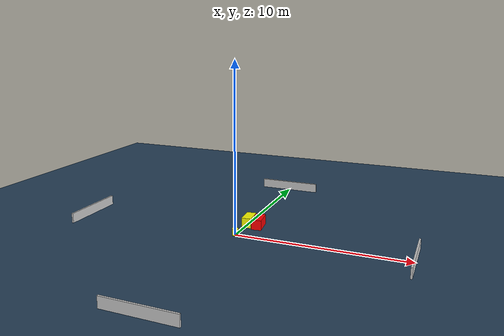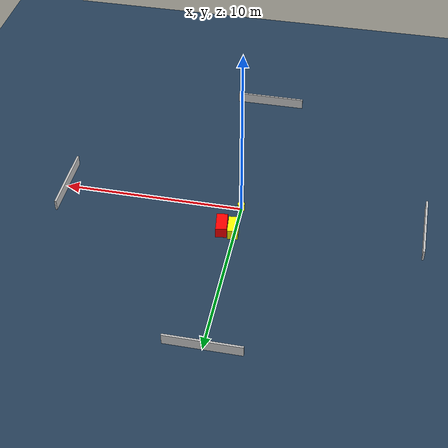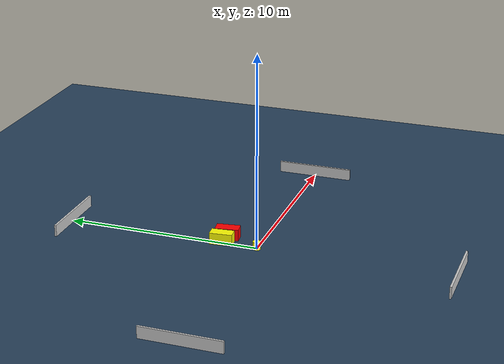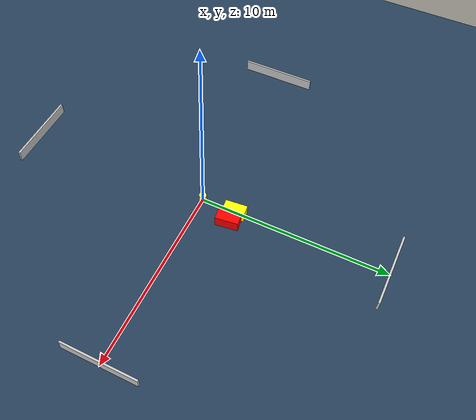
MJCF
<?xml version="1.0" ?>
<mujoco model="generated_environment">
  <option timestep="0.01" integrator="RK4" cone="elliptic"/>
  <default>
    <geom density="1"/>
  </default>
  <asset>
    <texture builtin="gradient" height="3072" name="skybox" rgb1="0.3 0.5 0.7" rgb2="0 0 0" type="skybox" width="512"/>
    <texture builtin="checker" height="300" name="groundplane" rgb1="0.2 0.3 0.4" rgb2="0.1 0.2 0.3" type="2d" width="300"/>
    <material name="groundplane" reflectance="0.2" texrepeat="5 5" texture="groundplane"/>
  </asset>
  <worldbody>
    <light dir="0 0 -1" directional="true" pos="0 0 1.5"/>
    <geom condim="3" friction="0.5 0.005 0.001" material="groundplane" name="floor" pos="0 0 0" size="0 0 0.05" type="plane"/>
    <body name="walls">
      <geom name="wall_1" condim="4" pos="-10.0 0.0 0.3" rgba="0.800000011920929 0.800000011920929 0.800000011920929 1.0" size="0.05 2.0 0.3" type="box"/>
      <geom name="wall_2" condim="4" pos="10.0 0.0 0.3" rgba="0.800000011920929 0.800000011920929 0.800000011920929 1.0" size="0.05 2.0 0.3" type="box"/>
      <geom name="wall_3" condim="4" pos="0.0 -10.0 0.3" rgba="0.800000011920929 0.800000011920929 0.800000011920929 1.0" size="2.0 0.05 0.3" type="box"/>
      <geom name="wall_4" condim="4" pos="0.0 10.0 0.3" rgba="0.800000011920929 0.800000011920929 0.800000011920929 1.0" size="2.0 0.05 0.3" type="box"/>
    </body>
    <body name="robot">
      <joint name="joint_x" type="slide" pos="0 0 0" axis="1 0 0"/>
      <joint name="joint_y" type="slide" pos="0 0 0" axis="0 1 0"/>
      <geom name="robot" type="cylinder" pos="0.0 0.0 0.2" size="0.2 0.2 0.0" mass="5.0" friction="1.0 0.005 0.0001" condim="4" rgba="1.0 1.0 0.0 1.0"/>
    </body>
    <body name="obstacle_1_movable">
      <geom name="obstacle_1_movable" condim="4" pos="0.08575171931337068 1.8616592679307677 0.3" euler="0 0 275.6678076220112" friction="0.0 0.005 0.001" rgba="1.0 1.0 0.0 1.0" size="0.5763475489690474 0.28566666124020795 0.3" type="box" mass="0.1"/>
      <joint type="free"/>
    </body>
    <body name="obstacle_2_static">
      <geom name="obstacle_2_static" condim="4" pos="0.73328144158616 1.7903103781900762 0.3" euler="0 0 277.6729897715047" friction="0.0 0.005 0.001" rgba="1.0 0.0 0.0 1.0" size="0.6019737265851357 0.2996788792264856 0.3" type="box"/>
    </body>
  </worldbody>
  <actuator>
    <motor name="actuator_x" joint="joint_x" gear="1" ctrlrange="-1 1"/>
    <motor name="actuator_y" joint="joint_y" gear="1" ctrlrange="-1 1"/>
  </actuator>
</mujoco>
